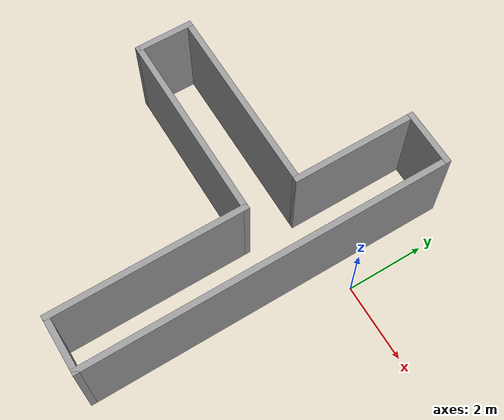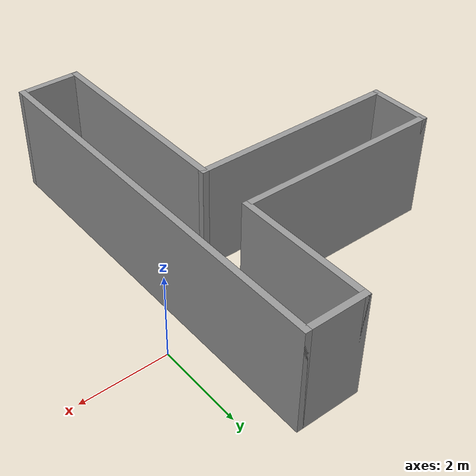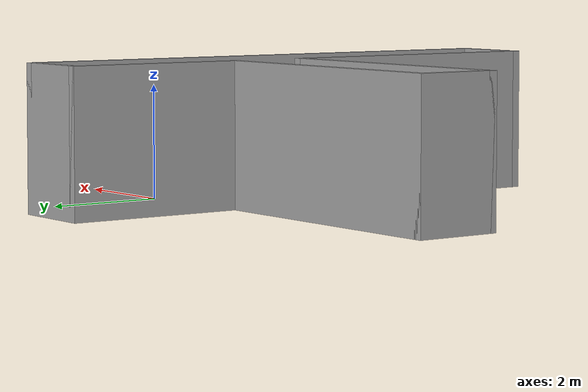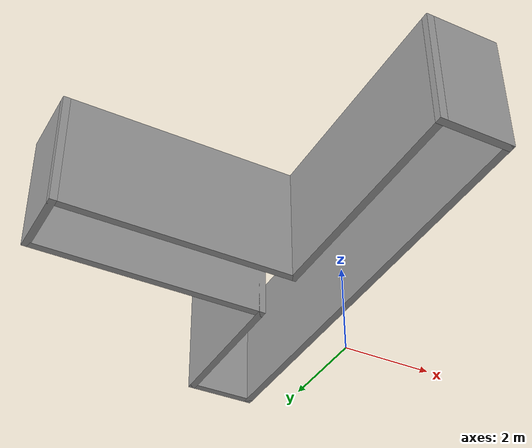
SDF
<?xml version='1.0'?>
<sdf version='1.7'>
  <model name='corridor'>
    <pose>-3.52736 -1.81089 0 0 -0 0</pose>
    <link name='Wall_0'>
      <collision name='Wall_0_Collision'>
        <geometry>
          <box>
            <size>1.5 0.15 2.5</size>
          </box>
        </geometry>
        <pose>0 0 1.25 0 -0 0</pose>
      </collision>
      <visual name='Wall_0_Visual'>
        <pose>0 0 1.25 0 -0 0</pose>
        <geometry>
          <box>
            <size>1.5 0.15 2.5</size>
          </box>
        </geometry>
        <material>
          <script>
            <uri>file://media/materials/scripts/gazebo.material</uri>
            <name>Gazebo/Grey</name>
          </script>
          <ambient>1 1 1 1</ambient>
        </material>
        <meta>
          <layer>0</layer>
        </meta>
      </visual>
      <pose>2.07264 -4.65 0 0 -0 3.14159</pose>
    </link>
    <link name='Wall_1'>
      <collision name='Wall_1_Collision'>
        <geometry>
          <box>
            <size>5 0.15 2.5</size>
          </box>
        </geometry>
        <pose>0 0 1.25 0 -0 0</pose>
      </collision>
      <visual name='Wall_1_Visual'>
        <pose>0 0 1.25 0 -0 0</pose>
        <geometry>
          <box>
            <size>5 0.15 2.5</size>
          </box>
        </geometry>
        <material>
          <script>
            <uri>file://media/materials/scripts/gazebo.material</uri>
            <name>Gazebo/Grey</name>
          </script>
          <ambient>1 1 1 1</ambient>
        </material>
        <meta>
          <layer>0</layer>
        </meta>
      </visual>
      <pose>1.39764 -2.225 0 0 -0 1.5708</pose>
    </link>
    <link name='Wall_2'>
      <collision name='Wall_2_Collision'>
        <geometry>
          <box>
            <size>5 0.15 2.5</size>
          </box>
        </geometry>
        <pose>0 0 1.25 0 -0 0</pose>
      </collision>
      <visual name='Wall_2_Visual'>
        <pose>0 0 1.25 0 -0 0</pose>
        <geometry>
          <box>
            <size>5 0.15 2.5</size>
          </box>
        </geometry>
        <material>
          <script>
            <uri>file://media/materials/scripts/gazebo.material</uri>
            <name>Gazebo/Grey</name>
          </script>
          <ambient>1 1 1 1</ambient>
        </material>
        <meta>
          <layer>0</layer>
        </meta>
      </visual>
      <pose>-1.02736 0.2 0 0 -0 3.14159</pose>
    </link>
    <link name='Wall_3'>
      <collision name='Wall_3_Collision'>
        <geometry>
          <box>
            <size>1.5 0.15 2.5</size>
          </box>
        </geometry>
        <pose>0 0 1.25 0 -0 0</pose>
      </collision>
      <visual name='Wall_3_Visual'>
        <pose>0 0 1.25 0 -0 0</pose>
        <geometry>
          <box>
            <size>1.5 0.15 2.5</size>
          </box>
        </geometry>
        <material>
          <script>
            <uri>file://media/materials/scripts/gazebo.material</uri>
            <name>Gazebo/Grey</name>
          </script>
          <ambient>1 1 1 1</ambient>
        </material>
        <meta>
          <layer>0</layer>
        </meta>
      </visual>
      <pose>-3.45236 0.875 0 0 -0 1.5708</pose>
    </link>
    <link name='Wall_4'>
      <collision name='Wall_4_Collision'>
        <geometry>
          <box>
            <size>5 0.15 2.5</size>
          </box>
        </geometry>
        <pose>0 0 1.25 0 -0 0</pose>
      </collision>
      <visual name='Wall_4_Visual'>
        <pose>0 0 1.25 0 -0 0</pose>
        <geometry>
          <box>
            <size>5 0.15 2.5</size>
          </box>
        </geometry>
        <material>
          <script>
            <uri>file://media/materials/scripts/gazebo.material</uri>
            <name>Gazebo/Grey</name>
          </script>
          <ambient>1 1 1 1</ambient>
        </material>
        <meta>
          <layer>0</layer>
        </meta>
      </visual>
      <pose>-1.02736 1.55 0 0 -0 0</pose>
    </link>
    <link name='Wall_5'>
      <collision name='Wall_5_Collision'>
        <geometry>
          <box>
            <size>3.25 0.15 2.5</size>
          </box>
        </geometry>
        <pose>0 0 1.25 0 -0 0</pose>
      </collision>
      <visual name='Wall_5_Visual'>
        <pose>0 0 1.25 0 -0 0</pose>
        <geometry>
          <box>
            <size>3.25 0.15 2.5</size>
          </box>
        </geometry>
        <material>
          <script>
            <uri>file://media/materials/scripts/gazebo.material</uri>
            <name>Gazebo/Grey</name>
          </script>
          <ambient>1 1 1 1</ambient>
        </material>
        <meta>
          <layer>0</layer>
        </meta>
      </visual>
      <pose>1.39764 3.1 0 0 -0 1.5708</pose>
    </link>
    <link name='Wall_6'>
      <collision name='Wall_6_Collision'>
        <geometry>
          <box>
            <size>1.5 0.15 2.5</size>
          </box>
        </geometry>
        <pose>0 0 1.25 0 -0 0</pose>
      </collision>
      <visual name='Wall_6_Visual'>
        <pose>0 0 1.25 0 -0 0</pose>
        <geometry>
          <box>
            <size>1.5 0.15 2.5</size>
          </box>
        </geometry>
        <material>
          <script>
            <uri>file://media/materials/scripts/gazebo.material</uri>
            <name>Gazebo/Grey</name>
          </script>
          <ambient>1 1 1 1</ambient>
        </material>
        <meta>
          <layer>0</layer>
        </meta>
      </visual>
      <pose>2.07264 4.65 0 0 -0 0</pose>
    </link>
    <link name='Wall_8'>
      <collision name='Wall_8_Collision'>
        <geometry>
          <box>
            <size>9.45 0.15 2.5</size>
          </box>
        </geometry>
        <pose>0 0 1.25 0 -0 0</pose>
      </collision>
      <visual name='Wall_8_Visual'>
        <pose>0 0 1.25 0 -0 0</pose>
        <geometry>
          <box>
            <size>9.45 0.15 2.5</size>
          </box>
        </geometry>
        <material>
          <script>
            <uri>file://media/materials/scripts/gazebo.material</uri>
            <name>Gazebo/Grey</name>
          </script>
          <ambient>1 1 1 1</ambient>
        </material>
        <meta>
          <layer>0</layer>
        </meta>
      </visual>
      <pose>2.74764 -0 0 0 -0 -1.5708</pose>
    </link>
    <static>1</static>
  </model>
</sdf>
